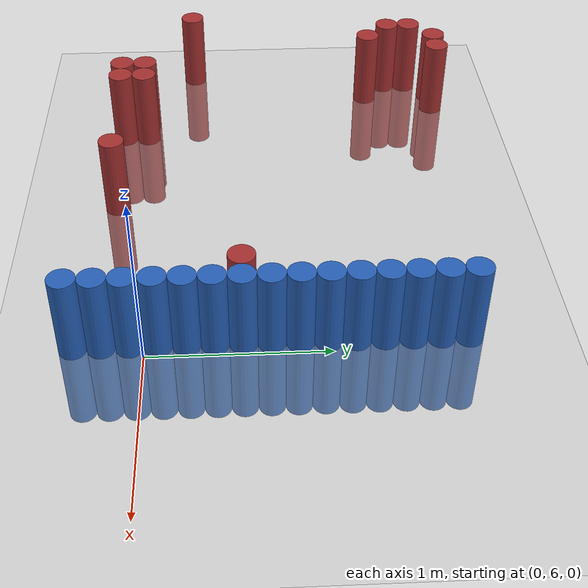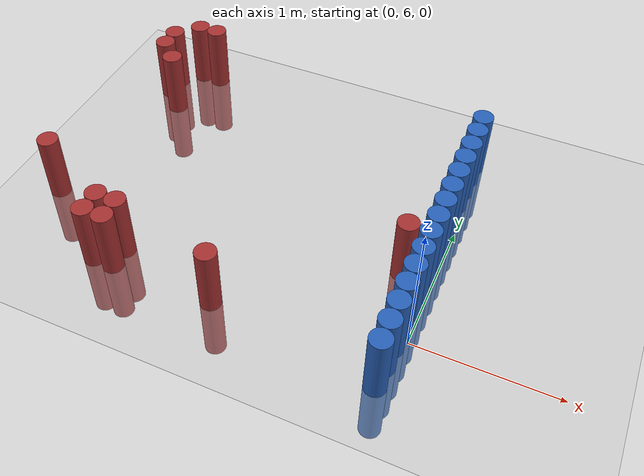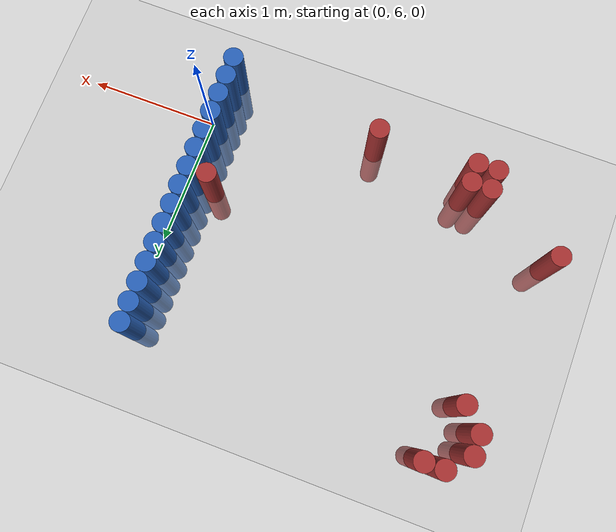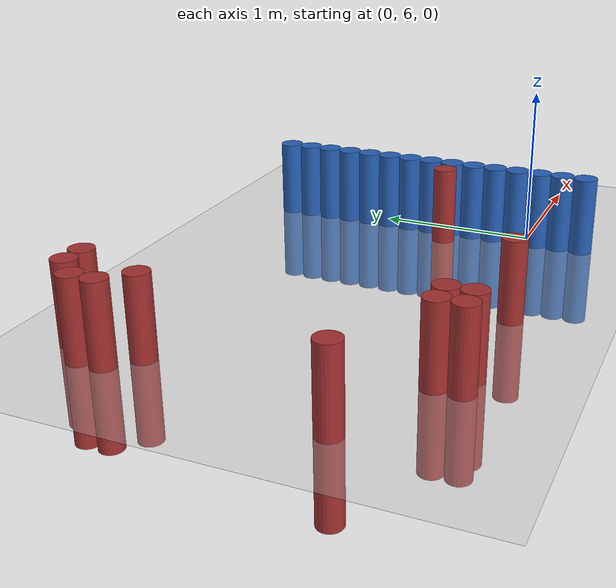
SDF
<sdf version="1.6">
 <world name="default">
  <model name="ground_plane">
   <static>1</static>
   <link name="link">
    <collision name="collision">
     <geometry><plane><normal>0 0 1</normal><size>100 100</size></plane></geometry>
     <surface><friction><ode><mu>100</mu><mu2>50</mu2></ode></friction></surface>
    </collision>
    <visual name="visual">
     <cast_shadows>0</cast_shadows>
     <geometry><plane><normal>0 0 1</normal><size>100 100</size></plane></geometry>
     <material>
      <script><uri>file://media/materials/scripts/gazebo.material</uri><name>Gazebo/Grey</name></script>
     </material>
    </visual>
   </link>
  </model>
  <model name="unit_cylinder_154">
   <static>1</static>
   <pose>-2.775000 6.225000 0.000000 0.000000 0.000000 0.000000</pose>
   <link name="link">
    <inertial>
     <mass>1</mass>
     <inertia><ixx>0.145833</ixx><ixy>0</ixy><ixz>0</ixz><iyy>0.145833</iyy><iyz>0</iyz><izz>0.125</izz></inertia>
    </inertial>
    <collision name="collision">
     <geometry><cylinder><radius>0.075000</radius><length>1</length></cylinder></geometry>
    </collision>
    <visual name="visual">
     <geometry><cylinder><radius>0.075000</radius><length>1</length></cylinder></geometry>
     <material>
      <ambient>0.648000 0.192000 0.192000 1</ambient>
      <diffuse>0.648000 0.192000 0.192000 1</diffuse>
     </material>
     <material>
      <script><name>Gazebo/Grey</name><uri>file://media/materials/scripts/gazebo.material</uri></script>
     </material>
    </visual>
   </link>
  </model>
  <model name="unit_cylinder_155">
   <static>1</static>
   <pose>-2.625000 7.575000 0.000000 0.000000 0.000000 0.000000</pose>
   <link name="link">
    <inertial>
     <mass>1</mass>
     <inertia><ixx>0.145833</ixx><ixy>0</ixy><ixz>0</ixz><iyy>0.145833</iyy><iyz>0</iyz><izz>0.125</izz></inertia>
    </inertial>
    <collision name="collision">
     <geometry><cylinder><radius>0.075000</radius><length>1</length></cylinder></geometry>
    </collision>
    <visual name="visual">
     <geometry><cylinder><radius>0.075000</radius><length>1</length></cylinder></geometry>
     <material>
      <ambient>0.648000 0.192000 0.192000 1</ambient>
      <diffuse>0.648000 0.192000 0.192000 1</diffuse>
     </material>
     <material>
      <script><name>Gazebo/Grey</name><uri>file://media/materials/scripts/gazebo.material</uri></script>
     </material>
    </visual>
   </link>
  </model>
  <model name="unit_cylinder_156">
   <static>1</static>
   <pose>-2.625000 7.725000 0.000000 0.000000 0.000000 0.000000</pose>
   <link name="link">
    <inertial>
     <mass>1</mass>
     <inertia><ixx>0.145833</ixx><ixy>0</ixy><ixz>0</ixz><iyy>0.145833</iyy><iyz>0</iyz><izz>0.125</izz></inertia>
    </inertial>
    <collision name="collision">
     <geometry><cylinder><radius>0.075000</radius><length>1</length></cylinder></geometry>
    </collision>
    <visual name="visual">
     <geometry><cylinder><radius>0.075000</radius><length>1</length></cylinder></geometry>
     <material>
      <ambient>0.648000 0.192000 0.192000 1</ambient>
      <diffuse>0.648000 0.192000 0.192000 1</diffuse>
     </material>
     <material>
      <script><name>Gazebo/Grey</name><uri>file://media/materials/scripts/gazebo.material</uri></script>
     </material>
    </visual>
   </link>
  </model>
  <model name="unit_cylinder_157">
   <static>1</static>
   <pose>-2.475000 7.425000 0.000000 0.000000 0.000000 0.000000</pose>
   <link name="link">
    <inertial>
     <mass>1</mass>
     <inertia><ixx>0.145833</ixx><ixy>0</ixy><ixz>0</ixz><iyy>0.145833</iyy><iyz>0</iyz><izz>0.125</izz></inertia>
    </inertial>
    <collision name="collision">
     <geometry><cylinder><radius>0.075000</radius><length>1</length></cylinder></geometry>
    </collision>
    <visual name="visual">
     <geometry><cylinder><radius>0.075000</radius><length>1</length></cylinder></geometry>
     <material>
      <ambient>0.648000 0.192000 0.192000 1</ambient>
      <diffuse>0.648000 0.192000 0.192000 1</diffuse>
     </material>
     <material>
      <script><name>Gazebo/Grey</name><uri>file://media/materials/scripts/gazebo.material</uri></script>
     </material>
    </visual>
   </link>
  </model>
  <model name="unit_cylinder_158">
   <static>1</static>
   <pose>-2.475000 7.875000 0.000000 0.000000 0.000000 0.000000</pose>
   <link name="link">
    <inertial>
     <mass>1</mass>
     <inertia><ixx>0.145833</ixx><ixy>0</ixy><ixz>0</ixz><iyy>0.145833</iyy><iyz>0</iyz><izz>0.125</izz></inertia>
    </inertial>
    <collision name="collision">
     <geometry><cylinder><radius>0.075000</radius><length>1</length></cylinder></geometry>
    </collision>
    <visual name="visual">
     <geometry><cylinder><radius>0.075000</radius><length>1</length></cylinder></geometry>
     <material>
      <ambient>0.648000 0.192000 0.192000 1</ambient>
      <diffuse>0.648000 0.192000 0.192000 1</diffuse>
     </material>
     <material>
      <script><name>Gazebo/Grey</name><uri>file://media/materials/scripts/gazebo.material</uri></script>
     </material>
    </visual>
   </link>
  </model>
  <model name="unit_cylinder_159">
   <static>1</static>
   <pose>-2.325000 7.875000 0.000000 0.000000 0.000000 0.000000</pose>
   <link name="link">
    <inertial>
     <mass>1</mass>
     <inertia><ixx>0.145833</ixx><ixy>0</ixy><ixz>0</ixz><iyy>0.145833</iyy><iyz>0</iyz><izz>0.125</izz></inertia>
    </inertial>
    <collision name="collision">
     <geometry><cylinder><radius>0.075000</radius><length>1</length></cylinder></geometry>
    </collision>
    <visual name="visual">
     <geometry><cylinder><radius>0.075000</radius><length>1</length></cylinder></geometry>
     <material>
      <ambient>0.648000 0.192000 0.192000 1</ambient>
      <diffuse>0.648000 0.192000 0.192000 1</diffuse>
     </material>
     <material>
      <script><name>Gazebo/Grey</name><uri>file://media/materials/scripts/gazebo.material</uri></script>
     </material>
    </visual>
   </link>
  </model>
  <model name="unit_cylinder_161">
   <static>1</static>
   <pose>-2.175000 5.775000 0.000000 0.000000 0.000000 0.000000</pose>
   <link name="link">
    <inertial>
     <mass>1</mass>
     <inertia><ixx>0.145833</ixx><ixy>0</ixy><ixz>0</ixz><iyy>0.145833</iyy><iyz>0</iyz><izz>0.125</izz></inertia>
    </inertial>
    <collision name="collision">
     <geometry><cylinder><radius>0.075000</radius><length>1</length></cylinder></geometry>
    </collision>
    <visual name="visual">
     <geometry><cylinder><radius>0.075000</radius><length>1</length></cylinder></geometry>
     <material>
      <ambient>0.648000 0.192000 0.192000 1</ambient>
      <diffuse>0.648000 0.192000 0.192000 1</diffuse>
     </material>
     <material>
      <script><name>Gazebo/Grey</name><uri>file://media/materials/scripts/gazebo.material</uri></script>
     </material>
    </visual>
   </link>
  </model>
  <model name="unit_cylinder_162">
   <static>1</static>
   <pose>-2.175000 5.925000 0.000000 0.000000 0.000000 0.000000</pose>
   <link name="link">
    <inertial>
     <mass>1</mass>
     <inertia><ixx>0.145833</ixx><ixy>0</ixy><ixz>0</ixz><iyy>0.145833</iyy><iyz>0</iyz><izz>0.125</izz></inertia>
    </inertial>
    <collision name="collision">
     <geometry><cylinder><radius>0.075000</radius><length>1</length></cylinder></geometry>
    </collision>
    <visual name="visual">
     <geometry><cylinder><radius>0.075000</radius><length>1</length></cylinder></geometry>
     <material>
      <ambient>0.648000 0.192000 0.192000 1</ambient>
      <diffuse>0.648000 0.192000 0.192000 1</diffuse>
     </material>
     <material>
      <script><name>Gazebo/Grey</name><uri>file://media/materials/scripts/gazebo.material</uri></script>
     </material>
    </visual>
   </link>
  </model>
  <model name="unit_cylinder_165">
   <static>1</static>
   <pose>-2.025000 5.775000 0.000000 0.000000 0.000000 0.000000</pose>
   <link name="link">
    <inertial>
     <mass>1</mass>
     <inertia><ixx>0.145833</ixx><ixy>0</ixy><ixz>0</ixz><iyy>0.145833</iyy><iyz>0</iyz><izz>0.125</izz></inertia>
    </inertial>
    <collision name="collision">
     <geometry><cylinder><radius>0.075000</radius><length>1</length></cylinder></geometry>
    </collision>
    <visual name="visual">
     <geometry><cylinder><radius>0.075000</radius><length>1</length></cylinder></geometry>
     <material>
      <ambient>0.648000 0.192000 0.192000 1</ambient>
      <diffuse>0.648000 0.192000 0.192000 1</diffuse>
     </material>
     <material>
      <script><name>Gazebo/Grey</name><uri>file://media/materials/scripts/gazebo.material</uri></script>
     </material>
    </visual>
   </link>
  </model>
  <model name="unit_cylinder_166">
   <static>1</static>
   <pose>-2.025000 5.925000 0.000000 0.000000 0.000000 0.000000</pose>
   <link name="link">
    <inertial>
     <mass>1</mass>
     <inertia><ixx>0.145833</ixx><ixy>0</ixy><ixz>0</ixz><iyy>0.145833</iyy><iyz>0</iyz><izz>0.125</izz></inertia>
    </inertial>
    <collision name="collision">
     <geometry><cylinder><radius>0.075000</radius><length>1</length></cylinder></geometry>
    </collision>
    <visual name="visual">
     <geometry><cylinder><radius>0.075000</radius><length>1</length></cylinder></geometry>
     <material>
      <ambient>0.648000 0.192000 0.192000 1</ambient>
      <diffuse>0.648000 0.192000 0.192000 1</diffuse>
     </material>
     <material>
      <script><name>Gazebo/Grey</name><uri>file://media/materials/scripts/gazebo.material</uri></script>
     </material>
    </visual>
   </link>
  </model>
  <model name="unit_cylinder_177">
   <static>1</static>
   <pose>-1.275000 5.775000 0.000000 0.000000 0.000000 0.000000</pose>
   <link name="link">
    <inertial>
     <mass>1</mass>
     <inertia><ixx>0.145833</ixx><ixy>0</ixy><ixz>0</ixz><iyy>0.145833</iyy><iyz>0</iyz><izz>0.125</izz></inertia>
    </inertial>
    <collision name="collision">
     <geometry><cylinder><radius>0.075000</radius><length>1</length></cylinder></geometry>
    </collision>
    <visual name="visual">
     <geometry><cylinder><radius>0.075000</radius><length>1</length></cylinder></geometry>
     <material>
      <ambient>0.648000 0.192000 0.192000 1</ambient>
      <diffuse>0.648000 0.192000 0.192000 1</diffuse>
     </material>
     <material>
      <script><name>Gazebo/Grey</name><uri>file://media/materials/scripts/gazebo.material</uri></script>
     </material>
    </visual>
   </link>
  </model>
  <model name="unit_cylinder_182">
   <static>1</static>
   <pose>-0.225000 6.525000 0.000000 0.000000 0.000000 0.000000</pose>
   <link name="link">
    <inertial>
     <mass>1</mass>
     <inertia><ixx>0.145833</ixx><ixy>0</ixy><ixz>0</ixz><iyy>0.145833</iyy><iyz>0</iyz><izz>0.125</izz></inertia>
    </inertial>
    <collision name="collision">
     <geometry><cylinder><radius>0.075000</radius><length>1</length></cylinder></geometry>
    </collision>
    <visual name="visual">
     <geometry><cylinder><radius>0.075000</radius><length>1</length></cylinder></geometry>
     <material>
      <ambient>0.648000 0.192000 0.192000 1</ambient>
      <diffuse>0.648000 0.192000 0.192000 1</diffuse>
     </material>
     <material>
      <script><name>Gazebo/Grey</name><uri>file://media/materials/scripts/gazebo.material</uri></script>
     </material>
    </visual>
   </link>
  </model>
  <model name="unit_cylinder_190">
   <static>1</static>
   <pose>-0.075000 5.625000 0.000000 0.000000 0.000000 0.000000</pose>
   <link name="link">
    <inertial>
     <mass>1</mass>
     <inertia><ixx>0.145833</ixx><ixy>0</ixy><ixz>0</ixz><iyy>0.145833</iyy><iyz>0</iyz><izz>0.125</izz></inertia>
    </inertial>
    <collision name="collision">
     <geometry><cylinder><radius>0.075000</radius><length>1</length></cylinder></geometry>
    </collision>
    <visual name="visual">
     <geometry><cylinder><radius>0.075000</radius><length>1</length></cylinder></geometry>
     <material>
      <ambient>0.152000 0.379000 0.720000 1</ambient>
      <diffuse>0.152000 0.379000 0.720000 1</diffuse>
     </material>
     <material>
      <script><name>Gazebo/Grey</name><uri>file://media/materials/scripts/gazebo.material</uri></script>
     </material>
    </visual>
   </link>
  </model>
  <model name="unit_cylinder_191">
   <static>1</static>
   <pose>-0.075000 5.775000 0.000000 0.000000 0.000000 0.000000</pose>
   <link name="link">
    <inertial>
     <mass>1</mass>
     <inertia><ixx>0.145833</ixx><ixy>0</ixy><ixz>0</ixz><iyy>0.145833</iyy><iyz>0</iyz><izz>0.125</izz></inertia>
    </inertial>
    <collision name="collision">
     <geometry><cylinder><radius>0.075000</radius><length>1</length></cylinder></geometry>
    </collision>
    <visual name="visual">
     <geometry><cylinder><radius>0.075000</radius><length>1</length></cylinder></geometry>
     <material>
      <ambient>0.152000 0.379000 0.720000 1</ambient>
      <diffuse>0.152000 0.379000 0.720000 1</diffuse>
     </material>
     <material>
      <script><name>Gazebo/Grey</name><uri>file://media/materials/scripts/gazebo.material</uri></script>
     </material>
    </visual>
   </link>
  </model>
  <model name="unit_cylinder_192">
   <static>1</static>
   <pose>-0.075000 5.925000 0.000000 0.000000 0.000000 0.000000</pose>
   <link name="link">
    <inertial>
     <mass>1</mass>
     <inertia><ixx>0.145833</ixx><ixy>0</ixy><ixz>0</ixz><iyy>0.145833</iyy><iyz>0</iyz><izz>0.125</izz></inertia>
    </inertial>
    <collision name="collision">
     <geometry><cylinder><radius>0.075000</radius><length>1</length></cylinder></geometry>
    </collision>
    <visual name="visual">
     <geometry><cylinder><radius>0.075000</radius><length>1</length></cylinder></geometry>
     <material>
      <ambient>0.152000 0.379000 0.720000 1</ambient>
      <diffuse>0.152000 0.379000 0.720000 1</diffuse>
     </material>
     <material>
      <script><name>Gazebo/Grey</name><uri>file://media/materials/scripts/gazebo.material</uri></script>
     </material>
    </visual>
   </link>
  </model>
  <model name="unit_cylinder_193">
   <static>1</static>
   <pose>-0.075000 6.075000 0.000000 0.000000 0.000000 0.000000</pose>
   <link name="link">
    <inertial>
     <mass>1</mass>
     <inertia><ixx>0.145833</ixx><ixy>0</ixy><ixz>0</ixz><iyy>0.145833</iyy><iyz>0</iyz><izz>0.125</izz></inertia>
    </inertial>
    <collision name="collision">
     <geometry><cylinder><radius>0.075000</radius><length>1</length></cylinder></geometry>
    </collision>
    <visual name="visual">
     <geometry><cylinder><radius>0.075000</radius><length>1</length></cylinder></geometry>
     <material>
      <ambient>0.152000 0.379000 0.720000 1</ambient>
      <diffuse>0.152000 0.379000 0.720000 1</diffuse>
     </material>
     <material>
      <script><name>Gazebo/Grey</name><uri>file://media/materials/scripts/gazebo.material</uri></script>
     </material>
    </visual>
   </link>
  </model>
  <model name="unit_cylinder_194">
   <static>1</static>
   <pose>-0.075000 6.225000 0.000000 0.000000 0.000000 0.000000</pose>
   <link name="link">
    <inertial>
     <mass>1</mass>
     <inertia><ixx>0.145833</ixx><ixy>0</ixy><ixz>0</ixz><iyy>0.145833</iyy><iyz>0</iyz><izz>0.125</izz></inertia>
    </inertial>
    <collision name="collision">
     <geometry><cylinder><radius>0.075000</radius><length>1</length></cylinder></geometry>
    </collision>
    <visual name="visual">
     <geometry><cylinder><radius>0.075000</radius><length>1</length></cylinder></geometry>
     <material>
      <ambient>0.152000 0.379000 0.720000 1</ambient>
      <diffuse>0.152000 0.379000 0.720000 1</diffuse>
     </material>
     <material>
      <script><name>Gazebo/Grey</name><uri>file://media/materials/scripts/gazebo.material</uri></script>
     </material>
    </visual>
   </link>
  </model>
  <model name="unit_cylinder_195">
   <static>1</static>
   <pose>-0.075000 6.375000 0.000000 0.000000 0.000000 0.000000</pose>
   <link name="link">
    <inertial>
     <mass>1</mass>
     <inertia><ixx>0.145833</ixx><ixy>0</ixy><ixz>0</ixz><iyy>0.145833</iyy><iyz>0</iyz><izz>0.125</izz></inertia>
    </inertial>
    <collision name="collision">
     <geometry><cylinder><radius>0.075000</radius><length>1</length></cylinder></geometry>
    </collision>
    <visual name="visual">
     <geometry><cylinder><radius>0.075000</radius><length>1</length></cylinder></geometry>
     <material>
      <ambient>0.152000 0.379000 0.720000 1</ambient>
      <diffuse>0.152000 0.379000 0.720000 1</diffuse>
     </material>
     <material>
      <script><name>Gazebo/Grey</name><uri>file://media/materials/scripts/gazebo.material</uri></script>
     </material>
    </visual>
   </link>
  </model>
  <model name="unit_cylinder_196">
   <static>1</static>
   <pose>-0.075000 6.525000 0.000000 0.000000 0.000000 0.000000</pose>
   <link name="link">
    <inertial>
     <mass>1</mass>
     <inertia><ixx>0.145833</ixx><ixy>0</ixy><ixz>0</ixz><iyy>0.145833</iyy><iyz>0</iyz><izz>0.125</izz></inertia>
    </inertial>
    <collision name="collision">
     <geometry><cylinder><radius>0.075000</radius><length>1</length></cylinder></geometry>
    </collision>
    <visual name="visual">
     <geometry><cylinder><radius>0.075000</radius><length>1</length></cylinder></geometry>
     <material>
      <ambient>0.152000 0.379000 0.720000 1</ambient>
      <diffuse>0.152000 0.379000 0.720000 1</diffuse>
     </material>
     <material>
      <script><name>Gazebo/Grey</name><uri>file://media/materials/scripts/gazebo.material</uri></script>
     </material>
    </visual>
   </link>
  </model>
  <model name="unit_cylinder_197">
   <static>1</static>
   <pose>-0.075000 6.675000 0.000000 0.000000 0.000000 0.000000</pose>
   <link name="link">
    <inertial>
     <mass>1</mass>
     <inertia><ixx>0.145833</ixx><ixy>0</ixy><ixz>0</ixz><iyy>0.145833</iyy><iyz>0</iyz><izz>0.125</izz></inertia>
    </inertial>
    <collision name="collision">
     <geometry><cylinder><radius>0.075000</radius><length>1</length></cylinder></geometry>
    </collision>
    <visual name="visual">
     <geometry><cylinder><radius>0.075000</radius><length>1</length></cylinder></geometry>
     <material>
      <ambient>0.152000 0.379000 0.720000 1</ambient>
      <diffuse>0.152000 0.379000 0.720000 1</diffuse>
     </material>
     <material>
      <script><name>Gazebo/Grey</name><uri>file://media/materials/scripts/gazebo.material</uri></script>
     </material>
    </visual>
   </link>
  </model>
  <model name="unit_cylinder_198">
   <static>1</static>
   <pose>-0.075000 6.825000 0.000000 0.000000 0.000000 0.000000</pose>
   <link name="link">
    <inertial>
     <mass>1</mass>
     <inertia><ixx>0.145833</ixx><ixy>0</ixy><ixz>0</ixz><iyy>0.145833</iyy><iyz>0</iyz><izz>0.125</izz></inertia>
    </inertial>
    <collision name="collision">
     <geometry><cylinder><radius>0.075000</radius><length>1</length></cylinder></geometry>
    </collision>
    <visual name="visual">
     <geometry><cylinder><radius>0.075000</radius><length>1</length></cylinder></geometry>
     <material>
      <ambient>0.152000 0.379000 0.720000 1</ambient>
      <diffuse>0.152000 0.379000 0.720000 1</diffuse>
     </material>
     <material>
      <script><name>Gazebo/Grey</name><uri>file://media/materials/scripts/gazebo.material</uri></script>
     </material>
    </visual>
   </link>
  </model>
  <model name="unit_cylinder_199">
   <static>1</static>
   <pose>-0.075000 6.975000 0.000000 0.000000 0.000000 0.000000</pose>
   <link name="link">
    <inertial>
     <mass>1</mass>
     <inertia><ixx>0.145833</ixx><ixy>0</ixy><ixz>0</ixz><iyy>0.145833</iyy><iyz>0</iyz><izz>0.125</izz></inertia>
    </inertial>
    <collision name="collision">
     <geometry><cylinder><radius>0.075000</radius><length>1</length></cylinder></geometry>
    </collision>
    <visual name="visual">
     <geometry><cylinder><radius>0.075000</radius><length>1</length></cylinder></geometry>
     <material>
      <ambient>0.152000 0.379000 0.720000 1</ambient>
      <diffuse>0.152000 0.379000 0.720000 1</diffuse>
     </material>
     <material>
      <script><name>Gazebo/Grey</name><uri>file://media/materials/scripts/gazebo.material</uri></script>
     </material>
    </visual>
   </link>
  </model>
  <model name="unit_cylinder_200">
   <static>1</static>
   <pose>-0.075000 7.125000 0.000000 0.000000 0.000000 0.000000</pose>
   <link name="link">
    <inertial>
     <mass>1</mass>
     <inertia><ixx>0.145833</ixx><ixy>0</ixy><ixz>0</ixz><iyy>0.145833</iyy><iyz>0</iyz><izz>0.125</izz></inertia>
    </inertial>
    <collision name="collision">
     <geometry><cylinder><radius>0.075000</radius><length>1</length></cylinder></geometry>
    </collision>
    <visual name="visual">
     <geometry><cylinder><radius>0.075000</radius><length>1</length></cylinder></geometry>
     <material>
      <ambient>0.152000 0.379000 0.720000 1</ambient>
      <diffuse>0.152000 0.379000 0.720000 1</diffuse>
     </material>
     <material>
      <script><name>Gazebo/Grey</name><uri>file://media/materials/scripts/gazebo.material</uri></script>
     </material>
    </visual>
   </link>
  </model>
  <model name="unit_cylinder_201">
   <static>1</static>
   <pose>-0.075000 7.275000 0.000000 0.000000 0.000000 0.000000</pose>
   <link name="link">
    <inertial>
     <mass>1</mass>
     <inertia><ixx>0.145833</ixx><ixy>0</ixy><ixz>0</ixz><iyy>0.145833</iyy><iyz>0</iyz><izz>0.125</izz></inertia>
    </inertial>
    <collision name="collision">
     <geometry><cylinder><radius>0.075000</radius><length>1</length></cylinder></geometry>
    </collision>
    <visual name="visual">
     <geometry><cylinder><radius>0.075000</radius><length>1</length></cylinder></geometry>
     <material>
      <ambient>0.152000 0.379000 0.720000 1</ambient>
      <diffuse>0.152000 0.379000 0.720000 1</diffuse>
     </material>
     <material>
      <script><name>Gazebo/Grey</name><uri>file://media/materials/scripts/gazebo.material</uri></script>
     </material>
    </visual>
   </link>
  </model>
  <model name="unit_cylinder_202">
   <static>1</static>
   <pose>-0.075000 7.425000 0.000000 0.000000 0.000000 0.000000</pose>
   <link name="link">
    <inertial>
     <mass>1</mass>
     <inertia><ixx>0.145833</ixx><ixy>0</ixy><ixz>0</ixz><iyy>0.145833</iyy><iyz>0</iyz><izz>0.125</izz></inertia>
    </inertial>
    <collision name="collision">
     <geometry><cylinder><radius>0.075000</radius><length>1</length></cylinder></geometry>
    </collision>
    <visual name="visual">
     <geometry><cylinder><radius>0.075000</radius><length>1</length></cylinder></geometry>
     <material>
      <ambient>0.152000 0.379000 0.720000 1</ambient>
      <diffuse>0.152000 0.379000 0.720000 1</diffuse>
     </material>
     <material>
      <script><name>Gazebo/Grey</name><uri>file://media/materials/scripts/gazebo.material</uri></script>
     </material>
    </visual>
   </link>
  </model>
  <model name="unit_cylinder_203">
   <static>1</static>
   <pose>-0.075000 7.575000 0.000000 0.000000 0.000000 0.000000</pose>
   <link name="link">
    <inertial>
     <mass>1</mass>
     <inertia><ixx>0.145833</ixx><ixy>0</ixy><ixz>0</ixz><iyy>0.145833</iyy><iyz>0</iyz><izz>0.125</izz></inertia>
    </inertial>
    <collision name="collision">
     <geometry><cylinder><radius>0.075000</radius><length>1</length></cylinder></geometry>
    </collision>
    <visual name="visual">
     <geometry><cylinder><radius>0.075000</radius><length>1</length></cylinder></geometry>
     <material>
      <ambient>0.152000 0.379000 0.720000 1</ambient>
      <diffuse>0.152000 0.379000 0.720000 1</diffuse>
     </material>
     <material>
      <script><name>Gazebo/Grey</name><uri>file://media/materials/scripts/gazebo.material</uri></script>
     </material>
    </visual>
   </link>
  </model>
  <model name="unit_cylinder_204">
   <static>1</static>
   <pose>-0.075000 7.725000 0.000000 0.000000 0.000000 0.000000</pose>
   <link name="link">
    <inertial>
     <mass>1</mass>
     <inertia><ixx>0.145833</ixx><ixy>0</ixy><ixz>0</ixz><iyy>0.145833</iyy><iyz>0</iyz><izz>0.125</izz></inertia>
    </inertial>
    <collision name="collision">
     <geometry><cylinder><radius>0.075000</radius><length>1</length></cylinder></geometry>
    </collision>
    <visual name="visual">
     <geometry><cylinder><radius>0.075000</radius><length>1</length></cylinder></geometry>
     <material>
      <ambient>0.152000 0.379000 0.720000 1</ambient>
      <diffuse>0.152000 0.379000 0.720000 1</diffuse>
     </material>
     <material>
      <script><name>Gazebo/Grey</name><uri>file://media/materials/scripts/gazebo.material</uri></script>
     </material>
    </visual>
   </link>
  </model>
 </world>
</sdf>
